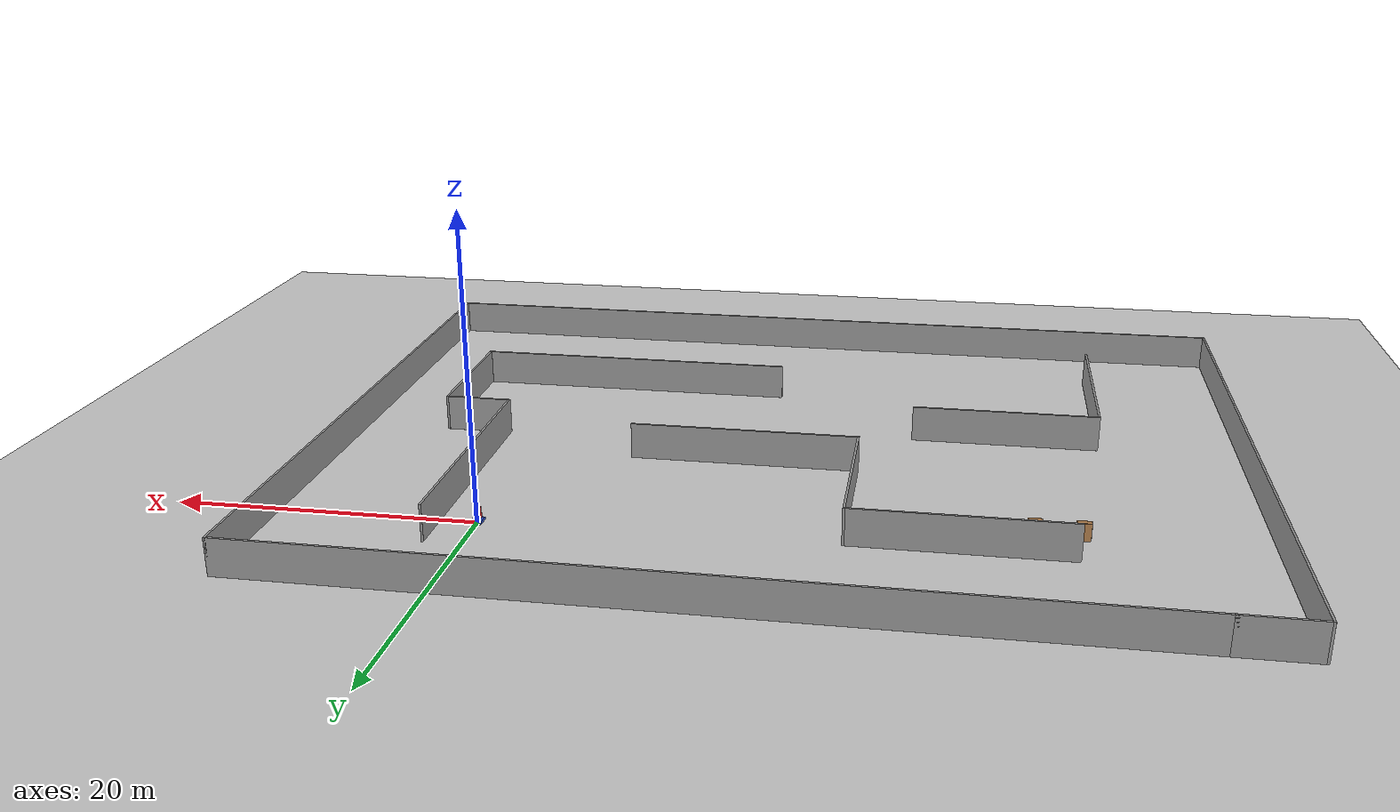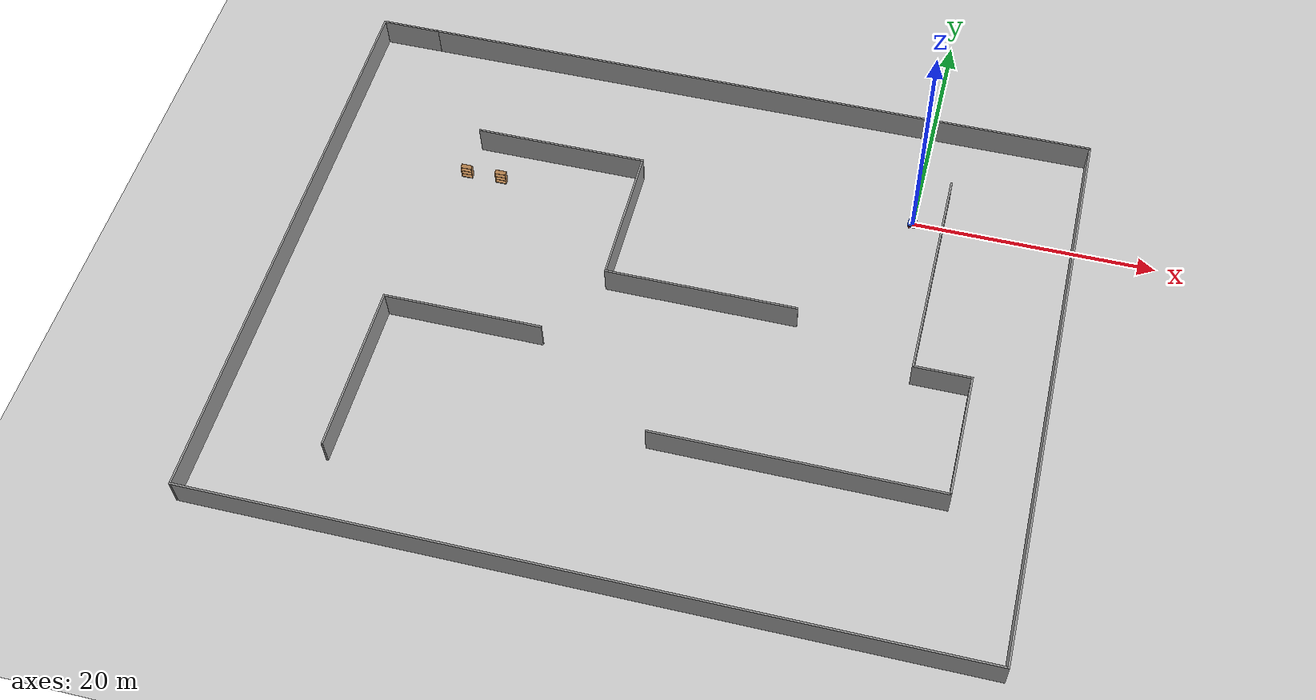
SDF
<sdf version="1.7">
 <world name="default">
  <light name="sun" type="directional">
   <pose>0 0 10 0 -0 0</pose>
   <diffuse>0.8 0.8 0.8 1</diffuse>
   <specular>0.2 0.2 0.2 1</specular>
   <attenuation>
    <range>1000</range>
    <constant>0.9</constant>
    <linear>0.01</linear>
    <quadratic>0.001</quadratic>
   </attenuation>
   <direction>-0.5 0.1 -0.9</direction>
   <spot><inner_angle>0</inner_angle><outer_angle>0</outer_angle><falloff>0</falloff></spot>
  </light>
  <model name="ground_plane">
   <static>1</static>
   <link name="link">
    <collision name="collision">
     <geometry><plane><normal>0 0 1</normal><size>100 100</size></plane></geometry>
     <surface>
      <contact><collide_bitmask>65535</collide_bitmask></contact>
      <friction><ode><mu>100</mu><mu2>50</mu2></ode></friction>
     </surface>
    </collision>
    <visual name="visual">
     <cast_shadows>0</cast_shadows>
     <geometry><plane><normal>0 0 1</normal><size>100 100</size></plane></geometry>
     <material>
      <script><uri>file://media/materials/scripts/gazebo.material</uri><name>Gazebo/Grey</name></script>
     </material>
    </visual>
   </link>
  </model>
  <gravity>0 0 -9.8</gravity>
  <magnetic_field>6e-06 2.3e-05 -4.2e-05</magnetic_field>
  <atmosphere type="adiabatic"/>
  <physics type="ode">
   <max_step_size>0.001</max_step_size>
   <real_time_factor>1</real_time_factor>
   <real_time_update_rate>1000</real_time_update_rate>
  </physics>
  <scene><ambient>0.4 0.4 0.4 1</ambient><background>0.7 0.7 0.7 1</background><shadows>1</shadows></scene>
  <audio><device>default</device></audio>
  <spherical_coordinates>
   <surface_model>EARTH_WGS84</surface_model>
   <latitude_deg>0</latitude_deg>
   <longitude_deg>0</longitude_deg>
   <elevation>0</elevation>
   <heading_deg>0</heading_deg>
  </spherical_coordinates>
  <model name="my_robot">
   <link name="base_footprint">
    <inertial>
     <pose>0.079614 0 0.51457 0 -0 0</pose>
     <mass>15.1</mass>
     <inertia>
      <ixx>5.22748</ixx>
      <ixy>0</ixy>
      <ixz>0.553165</ixz>
      <iyy>5.43437</iyy>
      <iyz>0</iyz>
      <izz>0.778595</izz>
     </inertia>
    </inertial>
    <collision name="base_footprint_fixed_joint_lump__base_link_collision">
     <pose>0 0 0.2 0 -0 0</pose>
     <geometry><box><size>0.7 0.75 0.2</size></box></geometry>
    </collision>
    <collision name="base_footprint_fixed_joint_lump__camera_link_collision_1">
     <pose>0.355 0 0.2 0 -0 0</pose>
     <geometry><box><size>0.01 0.1 0.05</size></box></geometry>
    </collision>
    <collision name="base_footprint_fixed_joint_lump__caster_wheel_link_collision_2">
     <pose>0.233333 0 0.05 0 -0 0</pose>
     <geometry><sphere><radius>0.05</radius></sphere></geometry>
     <surface><friction><ode><mu>0.1</mu><mu2>0.1</mu2></ode></friction></surface>
    </collision>
    <collision name="base_footprint_fixed_joint_lump__lidar_link_collision_3">
     <pose>0 0 1.11925 0 -0 0</pose>
     <geometry><cylinder><length>0.039</length><radius>0.077</radius></cylinder></geometry>
    </collision>
    <collision name="base_footprint_fixed_joint_lump__upper_base_link_collision_4">
     <pose>0 0 0.7 0 -0 0</pose>
     <geometry><box><size>0.4 0.4 0.8</size></box></geometry>
    </collision>
    <visual name="base_footprint_fixed_joint_lump__base_link_visual">
     <pose>0 0 0.2 0 -0 0</pose>
     <geometry><box><size>0.7 0.75 0.2</size></box></geometry>
     <material>
      <script><name>Gazebo/Blue</name><uri>file://media/materials/scripts/gazebo.material</uri></script>
     </material>
    </visual>
    <visual name="base_footprint_fixed_joint_lump__camera_link_visual_1">
     <pose>0.355 0 0.2 0 -0 0</pose>
     <geometry><box><size>0.01 0.1 0.05</size></box></geometry>
     <material>
      <script><name>Gazebo/Red</name><uri>file://media/materials/scripts/gazebo.material</uri></script>
     </material>
    </visual>
    <visual name="base_footprint_fixed_joint_lump__caster_wheel_link_visual_2">
     <pose>0.233333 0 0.05 0 -0 0</pose>
     <geometry><sphere><radius>0.05</radius></sphere></geometry>
     <material>
      <script><name>Gazebo/Green</name><uri>file://media/materials/scripts/gazebo.material</uri></script>
     </material>
    </visual>
    <visual name="base_footprint_fixed_joint_lump__lidar_link_visual_3">
     <pose>0 0 1.11925 0 -0 0</pose>
     <geometry><cylinder><length>0.039</length><radius>0.077</radius></cylinder></geometry>
    </visual>
    <visual name="base_footprint_fixed_joint_lump__upper_base_link_visual_4">
     <pose>0 0 0.7 0 -0 0</pose>
     <geometry><box><size>0.4 0.4 0.8</size></box></geometry>
     <material>
      <script><name>Gazebo/Red</name><uri>file://media/materials/scripts/gazebo.material</uri></script>
     </material>
    </visual>
    <sensor name="camera_sensor" type="camera">
     <visualize>1</visualize>
     <update_rate>10</update_rate>
     <plugin name="plugin_name" filename="libgazebo_ros_camera.so"><frame_name>camera_link</frame_name></plugin>
     <pose>0.355 0 0.2 0 -0 0</pose>
     <camera>
      <horizontal_fov>1.047</horizontal_fov>
      <image><width>320</width><height>240</height></image>
      <clip><near>0.1</near><far>100</far></clip>
     </camera>
    </sensor>
    <sensor name="laser" type="ray">
     <visualize>1</visualize>
     <update_rate>10</update_rate>
     <ray>
      <scan>
       <horizontal>
        <resolution>1</resolution>
        <min_angle>-3.14</min_angle>
        <max_angle>3.14</max_angle>
        <samples>640</samples>
        <sample>360</sample>
       </horizontal>
       <vertical><samples>1</samples><min_angle>0</min_angle><max_angle>0</max_angle></vertical>
      </scan>
      <range><min>0.5</min><max>18</max><resolution>1</resolution></range>
     </ray>
     <plugin name="laser_controller" filename="libgazebo_ros_ray_sensor.so">
      <ros><argument>~/out:=scan</argument></ros>
      <output_type>sensor_msgs/LaserScan</output_type>
      <frame_name>laser_link</frame_name>
     </plugin>
     <pose>0 0 1.1 0 -0 0</pose>
    </sensor>
   </link>
   <joint name="base_left_wheel_joint" type="revolute">
    <pose relative_to="base_footprint">-0.175 0.4 0.1 0 -0 0</pose>
    <parent>base_footprint</parent>
    <child>left_wheel_link</child>
    <axis>
     <xyz>0 1 0</xyz>
     <limit><lower>-1e+16</lower><upper>1e+16</upper></limit>
     <dynamics><spring_reference>0</spring_reference><spring_stiffness>0</spring_stiffness></dynamics>
    </axis>
   </joint>
   <link name="left_wheel_link">
    <pose relative_to="base_left_wheel_joint">0 0 0 0 -0 0</pose>
    <inertial>
     <pose>0 0 0 1.5708 -0 0</pose>
     <mass>1</mass>
     <inertia>
      <ixx>0.00270833</ixx>
      <ixy>0</ixy>
      <ixz>0</ixz>
      <iyy>0.00270833</iyy>
      <iyz>0</iyz>
      <izz>0.005</izz>
     </inertia>
    </inertial>
    <collision name="left_wheel_link_collision">
     <pose>0 0 0 1.5708 -0 0</pose>
     <geometry><cylinder><length>0.05</length><radius>0.1</radius></cylinder></geometry>
    </collision>
    <visual name="left_wheel_link_visual">
     <pose>0 0 0 1.5708 -0 0</pose>
     <geometry><cylinder><length>0.05</length><radius>0.1</radius></cylinder></geometry>
     <material>
      <script><name>Gazebo/Red</name><uri>file://media/materials/scripts/gazebo.material</uri></script>
     </material>
    </visual>
   </link>
   <joint name="base_right_wheel_joint" type="revolute">
    <pose relative_to="base_footprint">-0.175 -0.4 0.1 0 -0 0</pose>
    <parent>base_footprint</parent>
    <child>right_wheel_link</child>
    <axis>
     <xyz>0 1 0</xyz>
     <limit><lower>-1e+16</lower><upper>1e+16</upper></limit>
     <dynamics><spring_reference>0</spring_reference><spring_stiffness>0</spring_stiffness></dynamics>
    </axis>
   </joint>
   <link name="right_wheel_link">
    <pose relative_to="base_right_wheel_joint">0 0 0 0 -0 0</pose>
    <inertial>
     <pose>0 0 0 1.5708 -0 0</pose>
     <mass>1</mass>
     <inertia>
      <ixx>0.00270833</ixx>
      <ixy>0</ixy>
      <ixz>0</ixz>
      <iyy>0.00270833</iyy>
      <iyz>0</iyz>
      <izz>0.005</izz>
     </inertia>
    </inertial>
    <collision name="right_wheel_link_collision">
     <pose>0 0 0 1.5708 -0 0</pose>
     <geometry><cylinder><length>0.05</length><radius>0.1</radius></cylinder></geometry>
    </collision>
    <visual name="right_wheel_link_visual">
     <pose>0 0 0 1.5708 -0 0</pose>
     <geometry><cylinder><length>0.05</length><radius>0.1</radius></cylinder></geometry>
     <material>
      <script><name>Gazebo/Red</name><uri>file://media/materials/scripts/gazebo.material</uri></script>
     </material>
    </visual>
   </link>
   <static>0</static>
   <plugin name="gazebo_ros_diff_drive" filename="libgazebo_ros_diff_drive.so">
    <update_rate>50</update_rate>
    <left_joint>base_left_wheel_joint</left_joint>
    <right_joint>base_right_wheel_joint</right_joint>
    <wheel_separation>0.45</wheel_separation>
    <wheel_diameter>0.2</wheel_diameter>
    <publish_odom>1</publish_odom>
    <publish_odom_tf>1</publish_odom_tf>
    <publish_wheel_tf>1</publish_wheel_tf>
    <odometry_topic>odom</odometry_topic>
    <odometry_frame>odom</odometry_frame>
    <robot_base_frame>base_footprint</robot_base_frame>
   </plugin>
   <pose>-0.060373 -0.004988 -0 0 2e-06 -0.030537</pose>
  </model>
  <model name="Untitled">
   <pose>-17.9168 -14.3854 0 0 -0 0</pose>
   <link name="Wall_10">
    <collision name="Wall_10_Collision">
     <geometry><box><size>15.75 0.15 2.5</size></box></geometry>
     <pose>0 0 1.25 0 -0 0</pose>
    </collision>
    <visual name="Wall_10_Visual">
     <pose>0 0 1.25 0 -0 0</pose>
     <geometry><box><size>15.75 0.15 2.5</size></box></geometry>
     <material>
      <script><uri>file://media/materials/scripts/gazebo.material</uri><name>Gazebo/Grey</name></script>
      <ambient>1 1 1 1</ambient>
     </material>
     <meta><layer>0</layer></meta>
    </visual>
    <pose>2.79517 2.25792 0 0 -0 0</pose>
   </link>
   <link name="Wall_12">
    <collision name="Wall_12_Collision">
     <geometry><box><size>14 0.15 2.5</size></box></geometry>
     <pose>0 0 1.25 0 -0 0</pose>
    </collision>
    <visual name="Wall_12_Visual">
     <pose>0 0 1.25 0 -0 0</pose>
     <geometry><box><size>14 0.15 2.5</size></box></geometry>
     <material>
      <script><uri>file://media/materials/scripts/gazebo.material</uri><name>Gazebo/Grey</name></script>
      <ambient>1 1 1 1</ambient>
     </material>
     <meta><layer>0</layer></meta>
    </visual>
    <pose>-21.3507 -11.033 0 0 -0 1.5708</pose>
   </link>
   <link name="Wall_13">
    <collision name="Wall_13_Collision">
     <geometry><box><size>13 0.15 2.5</size></box></geometry>
     <pose>0 0 1.25 0 -0 0</pose>
    </collision>
    <visual name="Wall_13_Visual">
     <pose>0 0 1.25 0 -0 0</pose>
     <geometry><box><size>13 0.15 2.5</size></box></geometry>
     <material>
      <script><uri>file://media/materials/scripts/gazebo.material</uri><name>Gazebo/Grey</name></script>
      <ambient>1 1 1 1</ambient>
     </material>
     <meta><layer>0</layer></meta>
    </visual>
    <pose>-14.9257 -4.10799 0 0 -0 0</pose>
   </link>
   <link name="Wall_16">
    <collision name="Wall_16_Collision">
     <geometry><box><size>18.5 0.15 2.5</size></box></geometry>
     <pose>0 0 1.25 0 -0 0</pose>
    </collision>
    <visual name="Wall_16_Visual">
     <pose>0 0 1.25 0 -0 0</pose>
     <geometry><box><size>18.5 0.15 2.5</size></box></geometry>
     <material>
      <script><uri>file://media/materials/scripts/gazebo.material</uri><name>Gazebo/Grey</name></script>
      <ambient>1 1 1 1</ambient>
     </material>
     <meta><layer>0</layer></meta>
    </visual>
    <pose>20.3843 8.23882 0 0 -0 -1.5708</pose>
   </link>
   <link name="Wall_17">
    <collision name="Wall_17_Collision">
     <geometry><box><size>4.75 0.15 2.5</size></box></geometry>
     <pose>0 0 1.25 0 -0 0</pose>
    </collision>
    <visual name="Wall_17_Visual">
     <pose>0 0 1.25 0 -0 0</pose>
     <geometry><box><size>4.75 0.15 2.5</size></box></geometry>
     <material>
      <script><uri>file://media/materials/scripts/gazebo.material</uri><name>Gazebo/Grey</name></script>
      <ambient>1 1 1 1</ambient>
     </material>
     <meta><layer>0</layer></meta>
    </visual>
    <pose>22.6843 -0.936182 0 0 -0 0</pose>
   </link>
   <link name="Wall_18">
    <collision name="Wall_18_Collision">
     <geometry><box><size>10.5 0.15 2.5</size></box></geometry>
     <pose>0 0 1.25 0 -0 0</pose>
    </collision>
    <visual name="Wall_18_Visual">
     <pose>0 0 1.25 0 -0 0</pose>
     <geometry><box><size>10.5 0.15 2.5</size></box></geometry>
     <material>
      <script><uri>file://media/materials/scripts/gazebo.material</uri><name>Gazebo/Grey</name></script>
      <ambient>1 1 1 1</ambient>
     </material>
     <meta><layer>0</layer></meta>
    </visual>
    <pose>24.9843 -6.11118 0 0 -0 -1.5708</pose>
   </link>
   <link name="Wall_19">
    <collision name="Wall_19_Collision">
     <geometry><box><size>23.25 0.15 2.5</size></box></geometry>
     <pose>0 0 1.25 0 -0 0</pose>
    </collision>
    <visual name="Wall_19_Visual">
     <pose>0 0 1.25 0 -0 0</pose>
     <geometry><box><size>23.25 0.15 2.5</size></box></geometry>
     <material>
      <script><uri>file://media/materials/scripts/gazebo.material</uri><name>Gazebo/Grey</name></script>
      <ambient>1 1 1 1</ambient>
     </material>
     <meta><layer>0</layer></meta>
    </visual>
    <pose>13.4343 -11.2862 0 0 -0 3.14159</pose>
   </link>
   <link name="Wall_2">
    <collision name="Wall_2_Collision">
     <geometry><box><size>57.5 0.15 2.5</size></box></geometry>
     <pose>0 0 1.25 0 -0 0</pose>
    </collision>
    <visual name="Wall_2_Visual">
     <pose>0 0 1.25 0 -0 0</pose>
     <geometry><box><size>57.5 0.15 2.5</size></box></geometry>
     <material>
      <script><uri>file://media/materials/scripts/gazebo.material</uri><name>Gazebo/Grey</name></script>
      <ambient>1 1 1 1</ambient>
     </material>
     <meta><layer>0</layer></meta>
    </visual>
    <pose>2.375 23.8 0 0 -0 0</pose>
   </link>
   <link name="Wall_3">
    <collision name="Wall_3_Collision">
     <geometry><box><size>47.75 0.15 2.5</size></box></geometry>
     <pose>0 0 1.25 0 -0 0</pose>
    </collision>
    <visual name="Wall_3_Visual">
     <pose>0 0 1.25 0 -0 0</pose>
     <geometry><box><size>47.75 0.15 2.5</size></box></geometry>
     <material>
      <script><uri>file://media/materials/scripts/gazebo.material</uri><name>Gazebo/Grey</name></script>
      <ambient>1 1 1 1</ambient>
     </material>
     <meta><layer>0</layer></meta>
    </visual>
    <pose>31.05 -0 0 0 -0 -1.5708</pose>
   </link>
   <link name="Wall_4">
    <collision name="Wall_4_Collision">
     <geometry><box><size>62.25 0.15 2.5</size></box></geometry>
     <pose>0 0 1.25 0 -0 0</pose>
    </collision>
    <visual name="Wall_4_Visual">
     <pose>0 0 1.25 0 -0 0</pose>
     <geometry><box><size>62.25 0.15 2.5</size></box></geometry>
     <material>
      <script><uri>file://media/materials/scripts/gazebo.material</uri><name>Gazebo/Grey</name></script>
      <ambient>1 1 1 1</ambient>
     </material>
     <meta><layer>0</layer></meta>
    </visual>
    <pose>1e-06 -23.8 0 0 -0 3.14159</pose>
   </link>
   <link name="Wall_5">
    <collision name="Wall_5_Collision">
     <geometry><box><size>47.75 0.15 2.5</size></box></geometry>
     <pose>0 0 1.25 0 -0 0</pose>
    </collision>
    <visual name="Wall_5_Visual">
     <pose>0 0 1.25 0 -0 0</pose>
     <geometry><box><size>47.75 0.15 2.5</size></box></geometry>
     <material>
      <script><uri>file://media/materials/scripts/gazebo.material</uri><name>Gazebo/Grey</name></script>
      <ambient>1 1 1 1</ambient>
     </material>
     <meta><layer>0</layer></meta>
    </visual>
    <pose>-31.05 -0 0 0 -0 1.5708</pose>
   </link>
   <link name="Wall_6">
    <collision name="Wall_6_Collision">
     <geometry><box><size>5 0.15 2.5</size></box></geometry>
     <pose>0 0 1.25 0 -0 0</pose>
    </collision>
    <visual name="Wall_6_Visual">
     <pose>0 0 1.25 0 -0 0</pose>
     <geometry><box><size>5 0.15 2.5</size></box></geometry>
     <material>
      <script><uri>file://media/materials/scripts/gazebo.material</uri><name>Gazebo/Grey</name></script>
      <ambient>1 1 1 1</ambient>
     </material>
     <meta><layer>0</layer></meta>
    </visual>
    <pose>-28.625 23.8 0 0 -0 0</pose>
   </link>
   <link name="Wall_8">
    <collision name="Wall_8_Collision">
     <geometry><box><size>14.25 0.15 2.5</size></box></geometry>
     <pose>0 0 1.25 0 -0 0</pose>
    </collision>
    <visual name="Wall_8_Visual">
     <pose>0 0 1.25 0 -0 0</pose>
     <geometry><box><size>14.25 0.15 2.5</size></box></geometry>
     <material>
      <script><uri>file://media/materials/scripts/gazebo.material</uri><name>Gazebo/Grey</name></script>
      <ambient>1 1 1 1</ambient>
     </material>
     <meta><layer>0</layer></meta>
    </visual>
    <pose>-12.0548 13.8579 0 0 -0 0</pose>
   </link>
   <link name="Wall_9">
    <collision name="Wall_9_Collision">
     <geometry><box><size>11.75 0.15 2.5</size></box></geometry>
     <pose>0 0 1.25 0 -0 0</pose>
    </collision>
    <visual name="Wall_9_Visual">
     <pose>0 0 1.25 0 -0 0</pose>
     <geometry><box><size>11.75 0.15 2.5</size></box></geometry>
     <material>
      <script><uri>file://media/materials/scripts/gazebo.material</uri><name>Gazebo/Grey</name></script>
      <ambient>1 1 1 1</ambient>
     </material>
     <meta><layer>0</layer></meta>
    </visual>
    <pose>-5.00483 8.05792 0 0 -0 -1.5708</pose>
   </link>
   <static>1</static>
  </model>
  <model name="bookshelf">
   <static>1</static>
   <link name="link">
    <inertial><mass>1</mass></inertial>
    <collision name="back">
     <pose>0 0.005 0.6 0 -0 0</pose>
     <geometry><box><size>0.9 0.01 1.2</size></box></geometry>
    </collision>
    <visual name="visual1">
     <pose>0 0.005 0.6 0 -0 0</pose>
     <geometry><box><size>0.9 0.01 1.2</size></box></geometry>
     <material>
      <script><uri>file://media/materials/scripts/gazebo.material</uri><name>Gazebo/Wood</name></script>
     </material>
    </visual>
    <collision name="left_side">
     <pose>0.45 -0.195 0.6 0 -0 0</pose>
     <geometry><box><size>0.02 0.4 1.2</size></box></geometry>
    </collision>
    <visual name="visual2">
     <pose>0.45 -0.195 0.6 0 -0 0</pose>
     <geometry><box><size>0.02 0.4 1.2</size></box></geometry>
     <material>
      <script><uri>file://media/materials/scripts/gazebo.material</uri><name>Gazebo/Wood</name></script>
     </material>
    </visual>
    <collision name="right_side">
     <pose>-0.45 -0.195 0.6 0 -0 0</pose>
     <geometry><box><size>0.02 0.4 1.2</size></box></geometry>
    </collision>
    <visual name="visual3">
     <pose>-0.45 -0.195 0.6 0 -0 0</pose>
     <geometry><box><size>0.02 0.4 1.2</size></box></geometry>
     <material>
      <script><uri>file://media/materials/scripts/gazebo.material</uri><name>Gazebo/Wood</name></script>
     </material>
    </visual>
    <collision name="bottom">
     <pose>0 -0.195 0.03 0 -0 0</pose>
     <geometry><box><size>0.88 0.4 0.06</size></box></geometry>
    </collision>
    <visual name="visual4">
     <pose>0 -0.195 0.03 0 -0 0</pose>
     <geometry><box><size>0.88 0.4 0.06</size></box></geometry>
     <material>
      <script><uri>file://media/materials/scripts/gazebo.material</uri><name>Gazebo/Wood</name></script>
     </material>
    </visual>
    <collision name="top">
     <pose>0 -0.195 1.19 0 -0 0</pose>
     <geometry><box><size>0.88 0.4 0.02</size></box></geometry>
    </collision>
    <visual name="visual5">
     <pose>0 -0.195 1.19 0 -0 0</pose>
     <geometry><box><size>0.88 0.4 0.02</size></box></geometry>
     <material>
      <script><uri>file://media/materials/scripts/gazebo.material</uri><name>Gazebo/Wood</name></script>
     </material>
    </visual>
    <collision name="low_shelf">
     <pose>0 -0.195 0.43 0 -0 0</pose>
     <geometry><box><size>0.88 0.4 0.02</size></box></geometry>
    </collision>
    <visual name="visual6">
     <pose>0 -0.195 0.43 0 -0 0</pose>
     <geometry><box><size>0.88 0.4 0.02</size></box></geometry>
     <material>
      <script><uri>file://media/materials/scripts/gazebo.material</uri><name>Gazebo/Wood</name></script>
     </material>
    </visual>
    <collision name="high_shelf">
     <pose>0 -0.195 0.8 0 -0 0</pose>
     <geometry><box><size>0.88 0.4 0.02</size></box></geometry>
    </collision>
    <visual name="visual7">
     <pose>0 -0.195 0.8 0 -0 0</pose>
     <geometry><box><size>0.88 0.4 0.02</size></box></geometry>
     <material>
      <script><uri>file://media/materials/scripts/gazebo.material</uri><name>Gazebo/Wood</name></script>
     </material>
    </visual>
   </link>
   <pose>-37.4041 -3.40928 0 0 -0 0</pose>
  </model>
  <model name="bookshelf_0">
   <static>1</static>
   <link name="link">
    <inertial><mass>1</mass></inertial>
    <collision name="back">
     <pose>0 0.005 0.6 0 -0 0</pose>
     <geometry><box><size>0.9 0.01 1.2</size></box></geometry>
    </collision>
    <visual name="visual1">
     <pose>0 0.005 0.6 0 -0 0</pose>
     <geometry><box><size>0.9 0.01 1.2</size></box></geometry>
     <material>
      <script><uri>file://media/materials/scripts/gazebo.material</uri><name>Gazebo/Wood</name></script>
     </material>
    </visual>
    <collision name="left_side">
     <pose>0.45 -0.195 0.6 0 -0 0</pose>
     <geometry><box><size>0.02 0.4 1.2</size></box></geometry>
    </collision>
    <visual name="visual2">
     <pose>0.45 -0.195 0.6 0 -0 0</pose>
     <geometry><box><size>0.02 0.4 1.2</size></box></geometry>
     <material>
      <script><uri>file://media/materials/scripts/gazebo.material</uri><name>Gazebo/Wood</name></script>
     </material>
    </visual>
    <collision name="right_side">
     <pose>-0.45 -0.195 0.6 0 -0 0</pose>
     <geometry><box><size>0.02 0.4 1.2</size></box></geometry>
    </collision>
    <visual name="visual3">
     <pose>-0.45 -0.195 0.6 0 -0 0</pose>
     <geometry><box><size>0.02 0.4 1.2</size></box></geometry>
     <material>
      <script><uri>file://media/materials/scripts/gazebo.material</uri><name>Gazebo/Wood</name></script>
     </material>
    </visual>
    <collision name="bottom">
     <pose>0 -0.195 0.03 0 -0 0</pose>
     <geometry><box><size>0.88 0.4 0.06</size></box></geometry>
    </collision>
    <visual name="visual4">
     <pose>0 -0.195 0.03 0 -0 0</pose>
     <geometry><box><size>0.88 0.4 0.06</size></box></geometry>
     <material>
      <script><uri>file://media/materials/scripts/gazebo.material</uri><name>Gazebo/Wood</name></script>
     </material>
    </visual>
    <collision name="top">
     <pose>0 -0.195 1.19 0 -0 0</pose>
     <geometry><box><size>0.88 0.4 0.02</size></box></geometry>
    </collision>
    <visual name="visual5">
     <pose>0 -0.195 1.19 0 -0 0</pose>
     <geometry><box><size>0.88 0.4 0.02</size></box></geometry>
     <material>
      <script><uri>file://media/materials/scripts/gazebo.material</uri><name>Gazebo/Wood</name></script>
     </material>
    </visual>
    <collision name="low_shelf">
     <pose>0 -0.195 0.43 0 -0 0</pose>
     <geometry><box><size>0.88 0.4 0.02</size></box></geometry>
    </collision>
    <visual name="visual6">
     <pose>0 -0.195 0.43 0 -0 0</pose>
     <geometry><box><size>0.88 0.4 0.02</size></box></geometry>
     <material>
      <script><uri>file://media/materials/scripts/gazebo.material</uri><name>Gazebo/Wood</name></script>
     </material>
    </visual>
    <collision name="high_shelf">
     <pose>0 -0.195 0.8 0 -0 0</pose>
     <geometry><box><size>0.88 0.4 0.02</size></box></geometry>
    </collision>
    <visual name="visual7">
     <pose>0 -0.195 0.8 0 -0 0</pose>
     <geometry><box><size>0.88 0.4 0.02</size></box></geometry>
     <material>
      <script><uri>file://media/materials/scripts/gazebo.material</uri><name>Gazebo/Wood</name></script>
     </material>
    </visual>
   </link>
   <pose>-34.4548 -3.34587 0 0 -0 0</pose>
  </model>
 </world>
</sdf>
